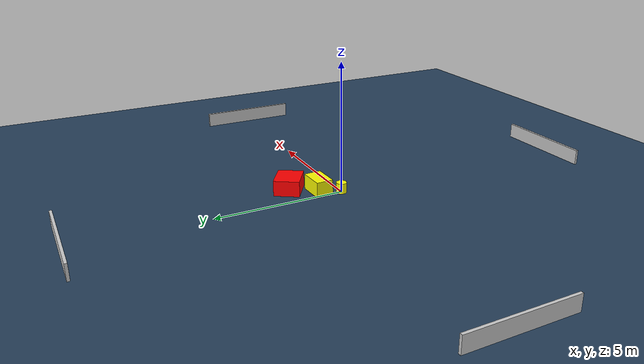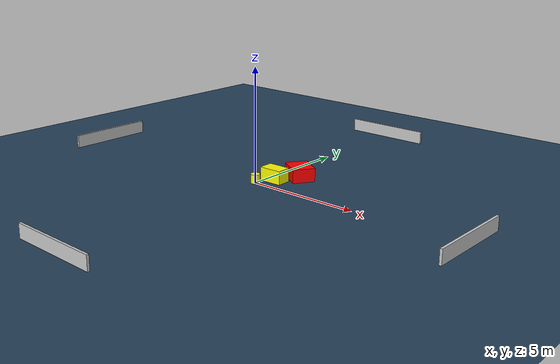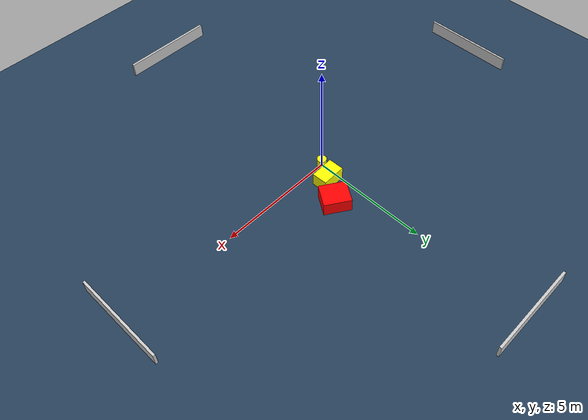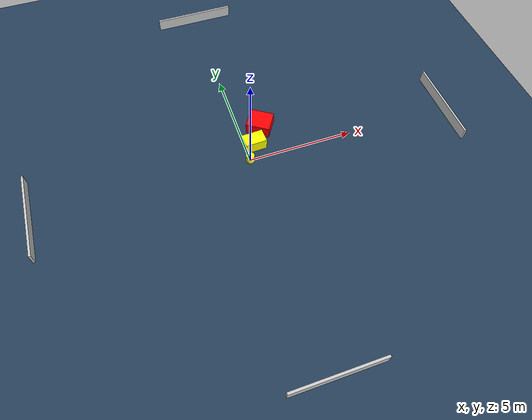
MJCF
<?xml version="1.0" ?>
<mujoco model="generated_environment">
  <option timestep="0.01" integrator="RK4" cone="elliptic"/>
  <default>
    <geom density="1"/>
  </default>
  <asset>
    <texture builtin="gradient" height="3072" name="skybox" rgb1="0.3 0.5 0.7" rgb2="0 0 0" type="skybox" width="512"/>
    <texture builtin="checker" height="300" name="groundplane" rgb1="0.2 0.3 0.4" rgb2="0.1 0.2 0.3" type="2d" width="300"/>
    <material name="groundplane" reflectance="0.2" texrepeat="5 5" texture="groundplane"/>
  </asset>
  <worldbody>
    <light dir="0 0 -1" directional="true" pos="0 0 1.5"/>
    <geom condim="3" friction="0.5 0.005 0.001" material="groundplane" name="floor" pos="0 0 0" size="0 0 0.05" type="plane"/>
    <body name="walls">
      <geom name="wall_1" condim="4" pos="-10.0 0.0 0.3" rgba="0.800000011920929 0.800000011920929 0.800000011920929 1.0" size="0.05 2.0 0.3" type="box"/>
      <geom name="wall_2" condim="4" pos="10.0 0.0 0.3" rgba="0.800000011920929 0.800000011920929 0.800000011920929 1.0" size="0.05 2.0 0.3" type="box"/>
      <geom name="wall_3" condim="4" pos="0.0 -10.0 0.3" rgba="0.800000011920929 0.800000011920929 0.800000011920929 1.0" size="2.0 0.05 0.3" type="box"/>
      <geom name="wall_4" condim="4" pos="0.0 10.0 0.3" rgba="0.800000011920929 0.800000011920929 0.800000011920929 1.0" size="2.0 0.05 0.3" type="box"/>
    </body>
    <body name="robot">
      <joint name="joint_x" type="slide" pos="0 0 0" axis="1 0 0"/>
      <joint name="joint_y" type="slide" pos="0 0 0" axis="0 1 0"/>
      <geom name="robot" type="cylinder" pos="0.0 0.0 0.2" size="0.2 0.2 0.0" mass="5.0" friction="1.0 0.005 0.0001" condim="4" rgba="1.0 1.0 0.0 1.0"/>
    </body>
    <body name="obstacle_1_movable">
      <geom name="obstacle_1_movable" condim="4" pos="0.4364492672653881 0.7441245612461942 0.3" euler="0 0 91.98082047206339" friction="0.0 0.005 0.001" rgba="1.0 1.0 0.0 1.0" size="0.3306629340567311 0.5098758618135408 0.3" type="box" mass="0.1"/>
      <joint type="free"/>
    </body>
    <body name="obstacle_2_static">
      <geom name="obstacle_2_static" condim="4" pos="1.0473331652186768 1.7025607786208048 0.3" euler="0 0 236.9500223850561" friction="0.0 0.005 0.001" rgba="1.0 0.0 0.0 1.0" size="0.49230991440093985 0.5661315446292458 0.3" type="box"/>
    </body>
  </worldbody>
  <actuator>
    <motor name="actuator_x" joint="joint_x" gear="1" ctrlrange="-1 1"/>
    <motor name="actuator_y" joint="joint_y" gear="1" ctrlrange="-1 1"/>
  </actuator>
</mujoco>
